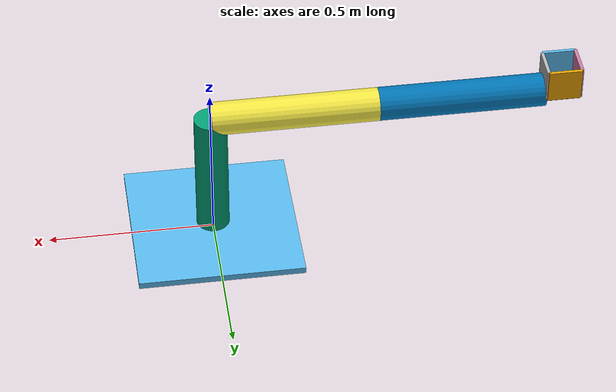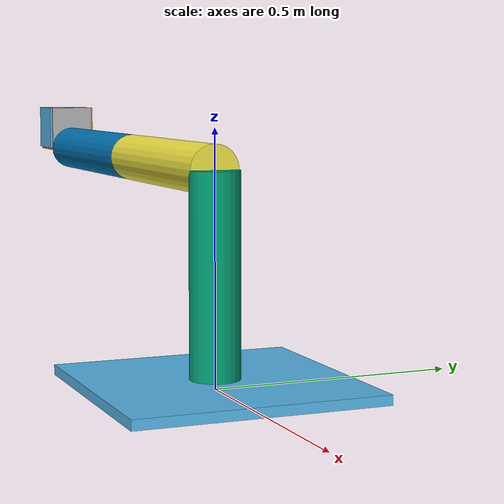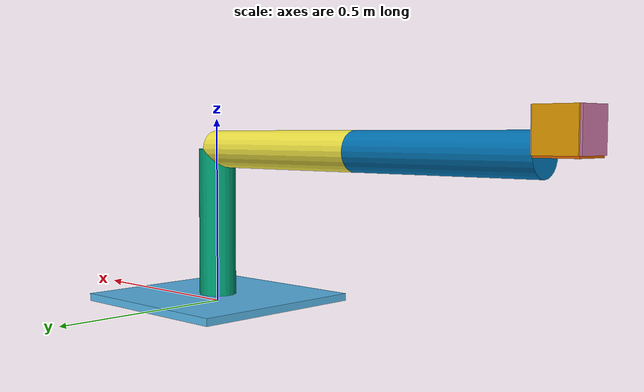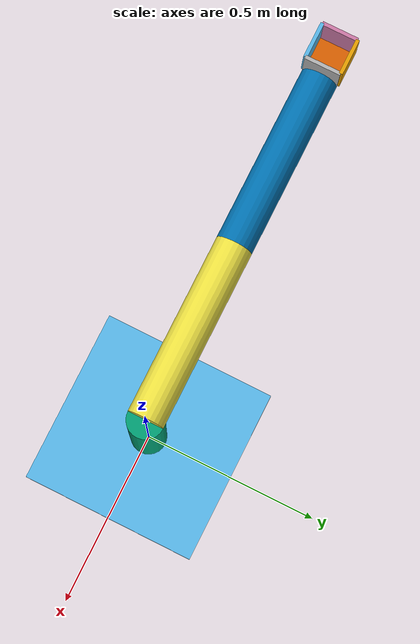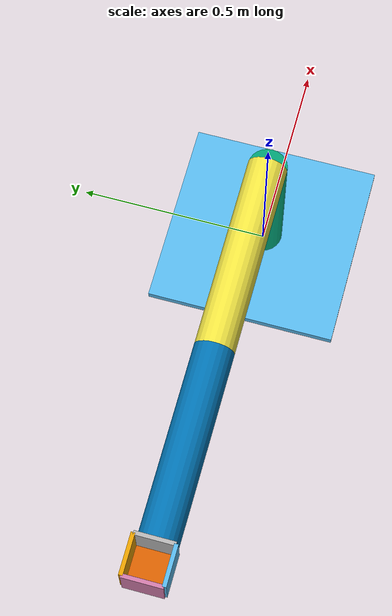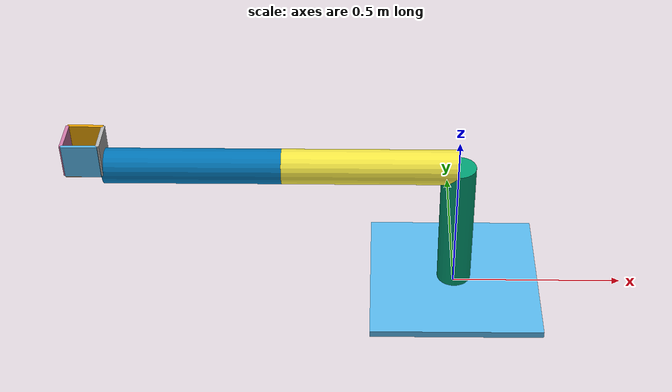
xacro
<?xml version="1.0"?>
<robot xmlns:xacro="http://www.ros.org/wiki/xacro" name="robot">
    <xacro:include filename="hand.urdf.xacro" />

    <link name="world"></link>

    <joint name="base_joint" type="fixed">
        <origin xyz="0 0 0" rpy="0 0 0"/>
        <parent link="world"/>
        <child link="base_link"/>
    </joint>

    <link name="base_link">
        <visual>
            <origin xyz="0 0 0.01" rpy="0 0 0"/>
            <geometry>
                <box size="0.5 0.5 0.02"/>
            </geometry>
        </visual>
        <collision>
            <origin xyz="0 0 0.01" rpy="0 0 0"/>
            <geometry>
                <box size="0.5 0.5 0.02"/>
            </geometry>
        </collision>
        <inertial>
            <origin xyz="0 0 0.01" rpy="0 0 0"/>
            <mass value="10" />
            <inertia ixx="0.2083" ixy="0.0" ixz="0.0" iyy="0.2083" iyz="0.0" izz="0.416667" />
        </inertial>
    </link>

    <joint name="under_joint" type="revolute">
        <origin xyz="0 0 0.02" rpy="0 0 0"/>
        <parent link="base_link"/>
        <child link="up_link"/>
        <axis xyz="0 0 1"/>
        <limit effort="1000.0" lower="-1.57" upper="1.57" velocity="1.0"/>
    </joint>

    <link name="up_link">
        <visual>
            <origin xyz="0 0 0.2" rpy="0 0 0"/>
            <geometry>
                <cylinder length="0.4" radius="0.05"/>
            </geometry>
        </visual>
        <collision>
            <origin xyz="0 0 0.2" rpy="0 0 0"/>
            <geometry>
                <cylinder length="0.4" radius="0.05"/>
            </geometry>
        </collision>
        <inertial>
            <origin xyz="0 0 0.2" rpy="0 0 0"/>
            <mass value="10" />
            <inertia ixx="0.139583" ixy="0.0" ixz="0.0" iyy="0.139583" iyz="0.0" izz="0.0125" />
        </inertial>
    </link>

    <joint name="shoulder" type="revolute">
        <origin xyz="0 0 0.4" rpy="0 0 0"/>
        <parent link="up_link"/>
        <child link="arm_link_1"/>
        <axis xyz="0 1 0"/>
        <limit effort="1000.0" lower="-1.57" upper="1.57" velocity="1.0"/>
    </joint>

    <link name="arm_link_1">
        <visual>
            <origin xyz="-0.25 0 0" rpy="0 -1.571 0"/>
            <geometry>
                <cylinder length="0.5" radius="0.05"/>
            </geometry>
        </visual>
        <collision>
            <origin xyz="-0.25 0 0" rpy="0 -1.571 0"/>
            <geometry>
                <cylinder length="0.5" radius="0.05"/>
            </geometry>
        </collision>
        <inertial>
            <origin xyz="-0.25 0 0" rpy="0 0 0"/>
            <mass value="10" />
            <inertia ixx="0" ixy="0.0" ixz="0.0" iyy="0.8333" iyz="0.0" izz="0" />
        </inertial>
    </link>

    <joint name="elbow" type="revolute">
        <origin xyz="-0.5 0 0" rpy="0 0 0"/>
        <parent link="arm_link_1"/>
        <child link="arm_link_2"/>
        <axis xyz="0 1 0"/>
        <limit effort="1000.0" lower="-1.57" upper="1.57" velocity="1.0"/>
    </joint>

    <link name="arm_link_2">
        <visual>
            <origin xyz="-0.25 0 0" rpy="0 -1.571 0"/>
            <geometry>
                <cylinder length="0.5" radius="0.05"/>
            </geometry>
        </visual>
        <collision>
            <origin xyz="-0.25 0 0" rpy="0 -1.571 0"/>
            <geometry>
                <cylinder length="0.5" radius="0.05"/>
            </geometry>
        </collision>
        <inertial>
            <origin xyz="-0.25 0 0" rpy="0 -1.571 0"/>
            <mass value="10" />
            <inertia ixx="0" ixy="0.0" ixz="0.0" iyy="0.8333" iyz="0.0" izz="0" />
        </inertial>
    </link>

    <joint name="wrist" type="revolute">
        <origin xyz="-0.5 0 0" rpy="0 0 0"/>
        <parent link="arm_link_2"/>
        <child link="hand_bottom_link"/>
        <axis xyz="0 1 0"/>
        <limit effort="1000.0" lower="-1.57" upper="1.57" velocity="1.0"/>
    </joint>

    <link name="hand_bottom_link">
        <xacro:hand_bottom />
    </link>

    <link name="hand_left_link">
        <xacro:hand_left/>
    </link>

    <link name="hand_right_link">
        <xacro:hand_right/>
    </link>

    <link name="hand_front_link">
        <xacro:hand_front/>
    </link>

    <link name="hand_back_link">
        <xacro:hand_back/>
    </link>

    <joint name="bottom_left_joint" type="fixed">
        <origin xyz="-0.1 0 0" rpy="0 0 0"/>
        <parent link="hand_bottom_link"/>
        <child link="hand_left_link"/>
    </joint>

    <joint name="bottom_right_joint" type="fixed">
        <origin xyz="0 0 0" rpy="0 0 0"/>
        <parent link="hand_bottom_link"/>
        <child link="hand_right_link"/>
    </joint>

    <joint name="bottom_front_joint" type="fixed">
        <origin xyz="-0.05 0.05 0" rpy="0 0 0"/>
        <parent link="hand_bottom_link"/>
        <child link="hand_front_link"/>
    </joint>

    <joint name="bottom_back_joint" type="fixed">
        <origin xyz="-0.05 -0.05 0" rpy="0 0 0"/>
        <parent link="hand_bottom_link"/>
        <child link="hand_back_link"/>
    </joint>
</robot>

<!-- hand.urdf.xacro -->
<robot xmlns:xacro="http://www.ros.org/wiki/xacro">

    <xacro:macro name="hand_bottom">
        <visual>
            <origin xyz="-0.05 0 0" rpy="0 0 0"/>
            <geometry>
                <box size="0.1 0.1 0.01"/>
            </geometry>
        </visual>
        <collision>
            <origin xyz="-0.05 0 -0.05" rpy="0 0 0"/>
            <geometry>
                <box size="0.1 0.1 0.01"/>
            </geometry>
        </collision>
        <inertial>
            <mass value="0.1" />
            <inertia ixx="0.000083" ixy="0.0" ixz="0.0" iyy="0.000083" iyz="0.0" izz="0.000167" />
        </inertial>
    </xacro:macro>

    <xacro:macro name="hand_left" >
        <visual>
            <origin xyz="0 0 0.05" rpy="0 0 0"/>
            <geometry>
                <box size="0.01 0.1 0.1"/>
            </geometry>
        </visual>
        <collision>
            <origin xyz="0 0 0.05" rpy="0 0 0"/>
            <geometry>
                <box size="0.01 0.1 0.1"/>
            </geometry>
        </collision>
        <inertial>
            <mass value="0.1" />
            <inertia ixx="0.000167" ixy="0.0" ixz="0.0" iyy="0.000083" iyz="0.0" izz="0.000083" />
        </inertial>
    </xacro:macro>

    <xacro:macro name="hand_right" >
        <visual>
            <origin xyz="0 0 0.05" rpy="0 0 0"/>
            <geometry>
                <box size="0.01 0.1 0.1"/>
            </geometry>
        </visual>
        <collision>
            <origin xyz="0 0 0.05" rpy="0 0 0"/>
            <geometry>
                <box size="0.01 0.1 0.1"/>
            </geometry>
        </collision>
        <inertial>
            <mass value="0.1" />
            <inertia ixx="0.000167" ixy="0.0" ixz="0.0" iyy="0.000083" iyz="0.0" izz="0.000083" />
        </inertial>
    </xacro:macro>

    <xacro:macro name="hand_front" >
        <visual>
            <origin xyz="0 0 0.05" rpy="0 0 0"/>
            <geometry>
                <box size="0.1 0.01 0.1"/>
            </geometry>
        </visual>
        <collision>
            <origin xyz="0 0 0.05" rpy="0 0 0"/>
            <geometry>
                <box size="0.1 0.01 0.1"/>
            </geometry>
        </collision>
        <inertial>
            <mass value="0.1" />
            <inertia ixx="0.000083" ixy="0.0" ixz="0.0" iyy="0.000167" iyz="0.0" izz="0.000083" />
        </inertial>
    </xacro:macro>

    <xacro:macro name="hand_back" >
        <visual>
            <origin xyz="0 0 0.05" rpy="0 0 0"/>
            <geometry>
                <box size="0.1 0.01 0.1"/>
            </geometry>
        </visual>
        <collision>
            <origin xyz="0 0 0.05" rpy="0 0 0"/>
            <geometry>
                <box size="0.1 0.01 0.1"/>
            </geometry>
        </collision>
        <inertial>
            <mass value="0.1" />
            <inertia ixx="0.000083" ixy="0.0" ixz="0.0" iyy="0.000167" iyz="0.0" izz="0.000083" />
        </inertial>
    </xacro:macro>
</robot>
